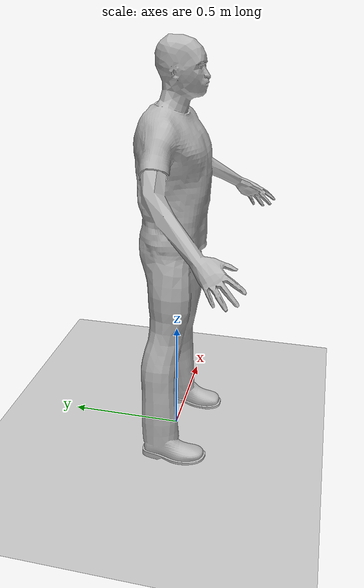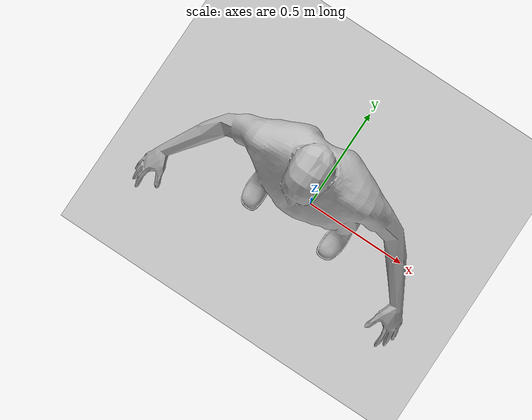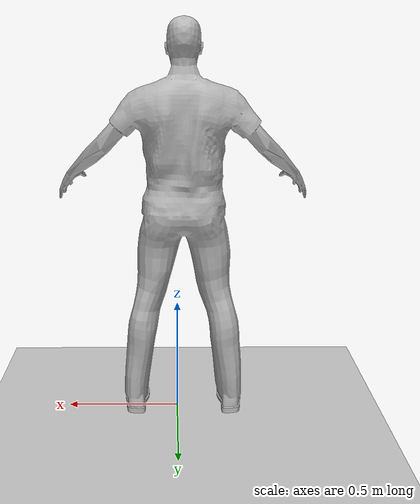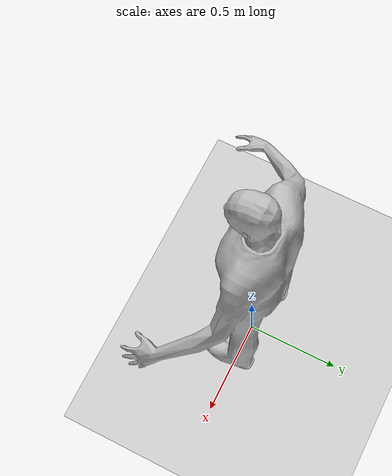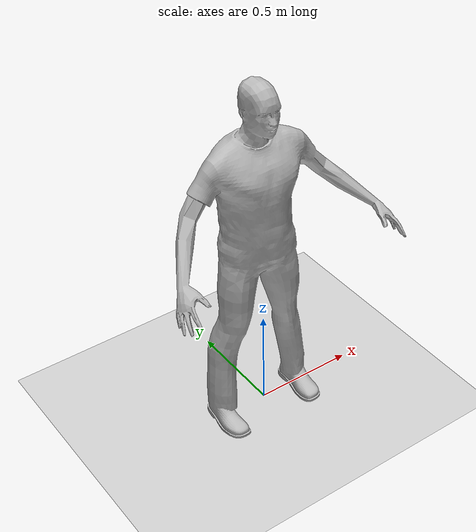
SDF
<sdf version="1.7">
 <world name="default">
  <light name="sun" type="directional">
   <pose>0 0 10 0 -0 0</pose>
   <diffuse>0.8 0.8 0.8 1</diffuse>
   <specular>0.2 0.2 0.2 1</specular>
   <attenuation>
    <range>1000</range>
    <constant>0.9</constant>
    <linear>0.01</linear>
    <quadratic>0.001</quadratic>
   </attenuation>
   <direction>-0.5 0.1 -0.9</direction>
   <spot><inner_angle>0</inner_angle><outer_angle>0</outer_angle><falloff>0</falloff></spot>
  </light>
  <model name="ground_plane">
   <static>1</static>
   <link name="link">
    <collision name="collision">
     <geometry><plane><normal>0 0 1</normal><size>100 100</size></plane></geometry>
     <surface><friction><ode><mu>100</mu><mu2>50</mu2></ode></friction></surface>
    </collision>
    <visual name="visual">
     <cast_shadows>0</cast_shadows>
     <geometry><plane><normal>0 0 1</normal><size>100 100</size></plane></geometry>
     <material>
      <script><uri>file://media/materials/scripts/gazebo.material</uri><name>Gazebo/Grey</name></script>
     </material>
    </visual>
   </link>
  </model>
  <gravity>0 0 -9.8</gravity>
  <magnetic_field>6e-06 2.3e-05 -4.2e-05</magnetic_field>
  <atmosphere type="adiabatic"/>
  <physics type="ode">
   <max_step_size>0.001</max_step_size>
   <real_time_factor>1</real_time_factor>
   <real_time_update_rate>1000</real_time_update_rate>
  </physics>
  <scene><ambient>0.4 0.4 0.4 1</ambient><background>0.7 0.7 0.7 1</background><shadows>1</shadows></scene>
  <spherical_coordinates>
   <surface_model>EARTH_WGS84</surface_model>
   <latitude_deg>0</latitude_deg>
   <longitude_deg>0</longitude_deg>
   <elevation>0</elevation>
   <heading_deg>0</heading_deg>
  </spherical_coordinates>
  <model name="Male">
   <link name="link">
    <inertial>
     <pose>0 0 0.5 0 -0 0</pose>
     <mass>80</mass>
     <inertia><ixx>24.88</ixx><ixy>0</ixy><ixz>0</ixz><iyy>25.73</iyy><iyz>0</iyz><izz>2.48</izz></inertia>
    </inertial>
    <collision name="bottom">
     <pose>0 0 0.01 0 -0 1.57</pose>
     <geometry><box><size>0.5 0.35 0.02</size></box></geometry>
    </collision>
    <visual name="visual"><geometry><mesh><uri>model://Male/meshes/male.dae</uri></mesh></geometry></visual>
   </link>
   <pose>-0.026853 0.041769 -1e-06 3e-06 1e-06 7.9e-05</pose>
  </model>
 </world>
</sdf>
